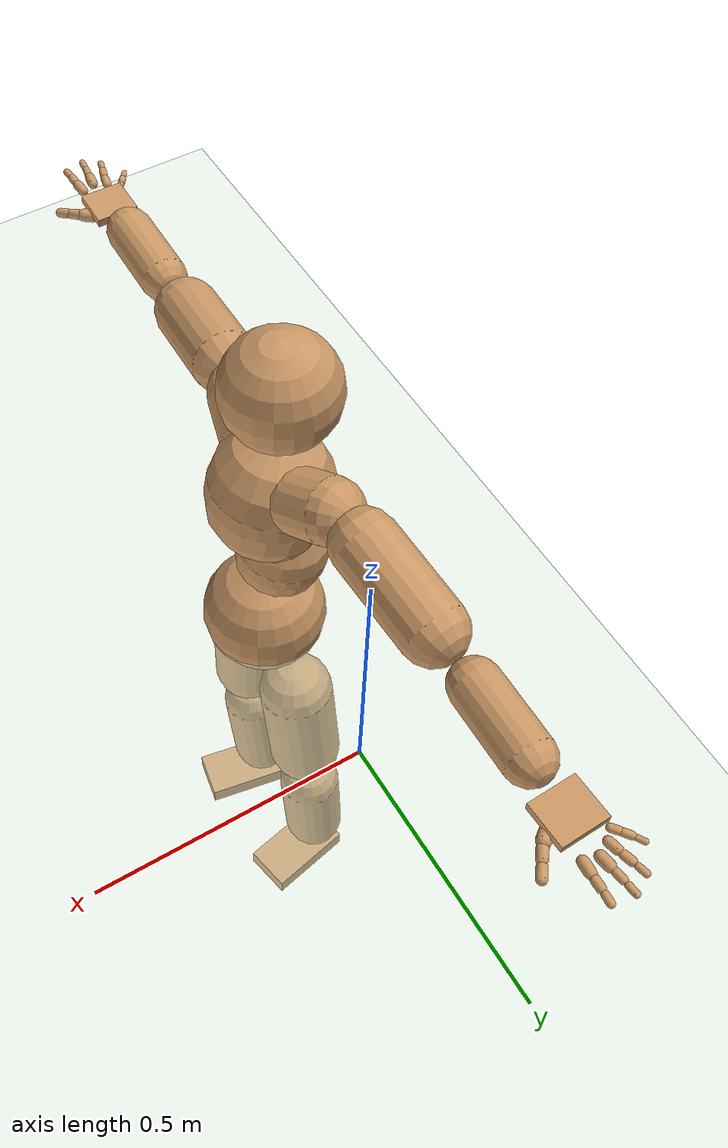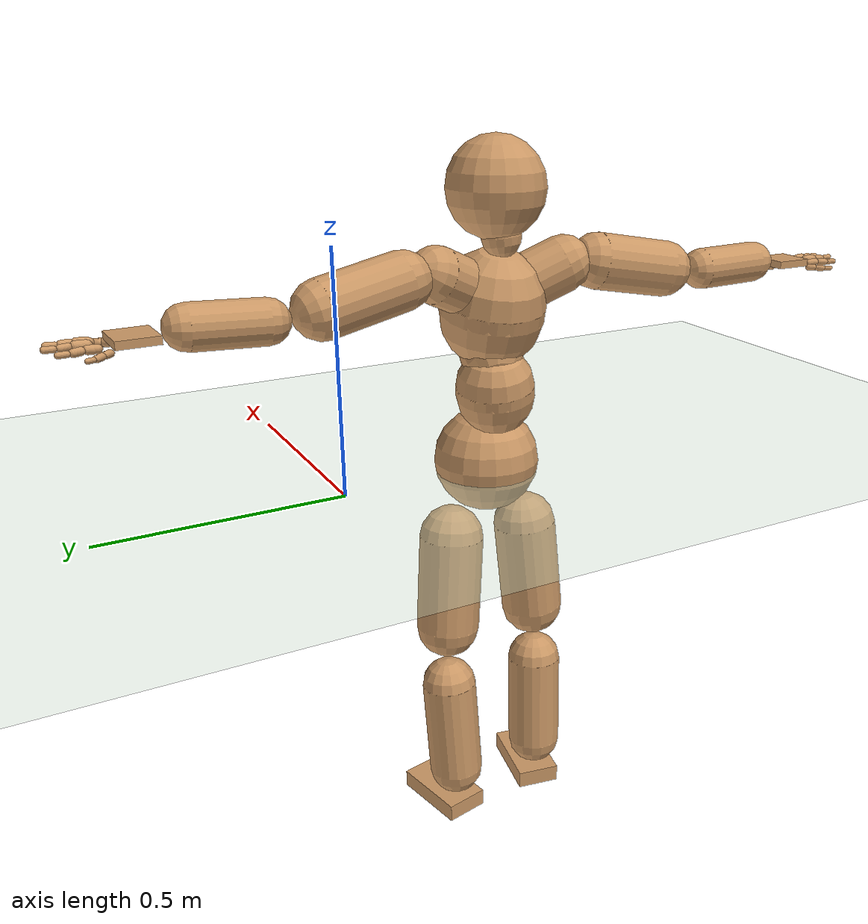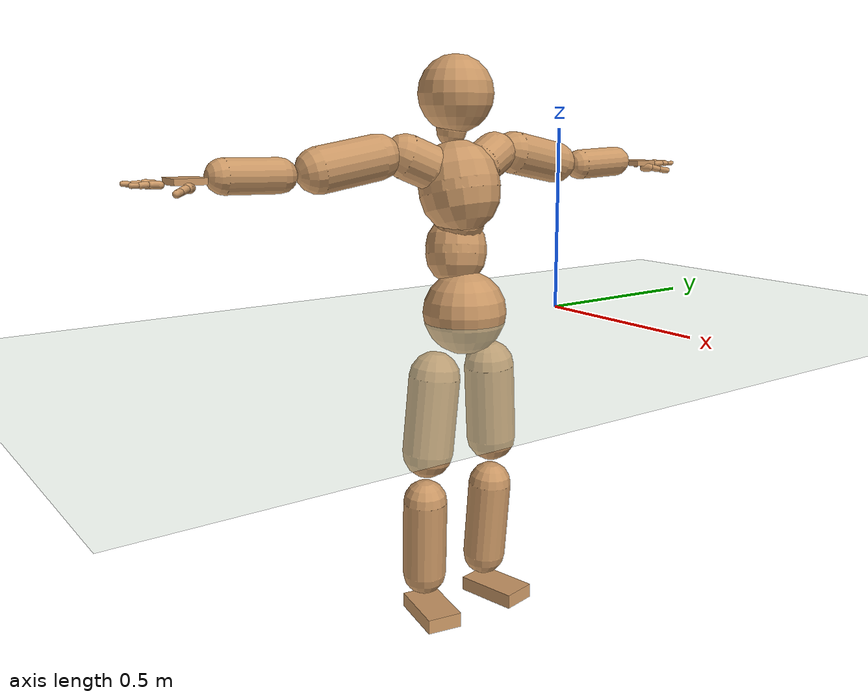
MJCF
<mujoco model="humanoid">
  <compiler coordinate="local" angle="radian"/>
  <default>
    <joint damping="0.0" armature="0.01" stiffness="0.0" limited="true"/>
    <geom conaffinity="1" condim="3" contype="7" margin="0.001" rgba="0.8 0.6 .4 1"/>
  </default>
  <asset>
    <texture type="skybox" builtin="gradient" rgb1=".4 .5 .6" rgb2="0 0 0" width="100" height="100"/>
    <texture builtin="flat" height="1278" mark="cross" markrgb="1 1 1" name="texgeom" random="0.01" rgb1="0.8 0.6 0.4" rgb2="0.8 0.6 0.4" type="cube" width="127"/>
    <texture builtin="checker" height="100" name="texplane" rgb1="0 0 0" rgb2="0.8 0.8 0.8" type="2d" width="100"/>
    <material name="MatPlane" reflectance="0.5" shininess="1" specular="1" texrepeat="60 60" texture="texplane"/>
    <material name="geom" texture="texgeom" texuniform="true"/>
  </asset>
  <worldbody>
    <light cutoff="100" diffuse="1 1 1" dir="-0 0 -1.3" directional="true" exponent="1" pos="0 0 1.3" specular=".1 .1 .1"/>
    <geom conaffinity="1" condim="3" name="floor" pos="0 0 0" rgba="0.8 0.9 0.8 1" size="100 100 .2" type="plane" material="MatPlane"/>
    <body name="Pelvis" pos="0.0009 -0.3265 0.0224">
      <freejoint name="Pelvis"/>
      <geom type="sphere" contype="1" conaffinity="1" density="500" size="0.1127" pos="0.0000 0.0000 0.0000" name="Pelvis"/>
      <body name="L_Hip" pos="-0.0074 0.0864 -0.0906">
        <joint name="L_Hip_x" type="hinge" pos="0 0 0" axis="1 0 0" stiffness="800" damping="80" armature="0.02" range="-180.0000 180.0000"/>
        <joint name="L_Hip_y" type="hinge" pos="0 0 0" axis="0 1 0" stiffness="800" damping="80" armature="0.02" range="-180.0000 180.0000"/>
        <joint name="L_Hip_z" type="hinge" pos="0 0 0" axis="0 0 1" stiffness="800" damping="80" armature="0.02" range="-180.0000 180.0000"/>
        <geom type="capsule" contype="1" conaffinity="1" density="500" fromto="-0.0033 0.0056 -0.0711 -0.0132 0.0225 -0.2843" size="0.0693" name="L_Hip"/>
        <body name="L_Knee" pos="-0.0165 0.0282 -0.3553">
          <joint name="L_Knee_x" type="hinge" pos="0 0 0" axis="1 0 0" stiffness="800" damping="80" armature="0.02" range="-180.0000 180.0000"/>
          <joint name="L_Knee_y" type="hinge" pos="0 0 0" axis="0 1 0" stiffness="800" damping="80" armature="0.02" range="-180.0000 180.0000"/>
          <joint name="L_Knee_z" type="hinge" pos="0 0 0" axis="0 0 1" stiffness="800" damping="80" armature="0.02" range="-180.0000 180.0000"/>
          <geom type="capsule" contype="1" conaffinity="1" density="500" fromto="-0.0054 -0.0024 -0.0745 -0.0216 -0.0097 -0.2978" size="0.0605" name="L_Knee"/>
          <body name="L_Ankle" pos="-0.027 -0.0122 -0.3723">
            <joint name="L_Ankle_x" type="hinge" pos="0 0 0" axis="1 0 0" stiffness="800" damping="80" armature="0.02" range="-180.0000 180.0000"/>
            <joint name="L_Ankle_y" type="hinge" pos="0 0 0" axis="0 1 0" stiffness="800" damping="80" armature="0.02" range="-180.0000 180.0000"/>
            <joint name="L_Ankle_z" type="hinge" pos="0 0 0" axis="0 0 1" stiffness="800" damping="80" armature="0.02" range="-180.0000 180.0000"/>
            <geom type="box" contype="1" conaffinity="1" density="500" pos="0.0541 0.0113 -0.0201" size="0.0877 0.0485 0.02" quat="0.9947 0.0000 0.0000 0.1026" name="L_Ankle"/>
            <body name="L_Toe" pos="0.1083 0.0226 -0.0402">
              <joint name="L_Toe_x" type="hinge" pos="0 0 0" axis="1 0 0" stiffness="500" damping="50" armature="0.02" range="-180.0000 180.0000"/>
              <joint name="L_Toe_y" type="hinge" pos="0 0 0" axis="0 1 0" stiffness="500" damping="50" armature="0.02" range="-180.0000 180.0000"/>
              <joint name="L_Toe_z" type="hinge" pos="0 0 0" axis="0 0 1" stiffness="500" damping="50" armature="0.02" range="-180.0000 180.0000"/>
              <geom type="box" contype="1" conaffinity="1" density="500" pos="0.0000 0.0000 0.0209" size="0.0009 0.0024 0.001" quat="0.9940 0.0000 0.0000 0.1095" name="L_Toe"/>
            </body>
          </body>
        </body>
      </body>
      <body name="R_Hip" pos="-0.0081 -0.0858 -0.0966">
        <joint name="R_Hip_x" type="hinge" pos="0 0 0" axis="1 0 0" stiffness="800" damping="80" armature="0.02" range="-180.0000 180.0000"/>
        <joint name="R_Hip_y" type="hinge" pos="0 0 0" axis="0 1 0" stiffness="800" damping="80" armature="0.02" range="-180.0000 180.0000"/>
        <joint name="R_Hip_z" type="hinge" pos="0 0 0" axis="0 0 1" stiffness="800" damping="80" armature="0.02" range="-180.0000 180.0000"/>
        <geom type="capsule" contype="1" conaffinity="1" density="500" fromto="-0.0020 -0.0066 -0.0703 -0.0081 -0.0265 -0.2813" size="0.0691" name="R_Hip"/>
        <body name="R_Knee" pos="-0.0101 -0.0331 -0.3516">
          <joint name="R_Knee_x" type="hinge" pos="0 0 0" axis="1 0 0" stiffness="800" damping="80" armature="0.02" range="-180.0000 180.0000"/>
          <joint name="R_Knee_y" type="hinge" pos="0 0 0" axis="0 1 0" stiffness="800" damping="80" armature="0.02" range="-180.0000 180.0000"/>
          <joint name="R_Knee_z" type="hinge" pos="0 0 0" axis="0 0 1" stiffness="800" damping="80" armature="0.02" range="-180.0000 180.0000"/>
          <geom type="capsule" contype="1" conaffinity="1" density="500" fromto="-0.0048 0.0015 -0.0727 -0.0191 0.0059 -0.2909" size="0.0605" name="R_Knee"/>
          <body name="R_Ankle" pos="-0.0238 0.0074 -0.3636">
            <joint name="R_Ankle_x" type="hinge" pos="0 0 0" axis="1 0 0" stiffness="800" damping="80" armature="0.02" range="-180.0000 180.0000"/>
            <joint name="R_Ankle_y" type="hinge" pos="0 0 0" axis="0 1 0" stiffness="800" damping="80" armature="0.02" range="-180.0000 180.0000"/>
            <joint name="R_Ankle_z" type="hinge" pos="0 0 0" axis="0 0 1" stiffness="800" damping="80" armature="0.02" range="-180.0000 180.0000"/>
            <geom type="box" contype="1" conaffinity="1" density="500" pos="0.0511 -0.0092 -0.0217" size="0.0877 0.0485 0.02" quat="0.9960 0.0000 0.0000 -0.0890" name="R_Ankle"/>
            <body name="R_Toe" pos="0.1022 -0.0184 -0.0433">
              <joint name="R_Toe_x" type="hinge" pos="0 0 0" axis="1 0 0" stiffness="500" damping="50" armature="0.02" range="-180.0000 180.0000"/>
              <joint name="R_Toe_y" type="hinge" pos="0 0 0" axis="0 1 0" stiffness="500" damping="50" armature="0.02" range="-180.0000 180.0000"/>
              <joint name="R_Toe_z" type="hinge" pos="0 0 0" axis="0 0 1" stiffness="500" damping="50" armature="0.02" range="-180.0000 180.0000"/>
              <geom type="box" contype="1" conaffinity="1" density="500" pos="0.0000 0.0000 0.0225" size="0.0009 0.0024 0.001" quat="0.9970 0.0000 0.0000 -0.0780" name="R_Toe"/>
            </body>
          </body>
        </body>
      </body>
      <body name="Torso" pos="-0.0303 -0.0067 0.1068">
        <joint name="Torso_x" type="hinge" pos="0 0 0" axis="1 0 0" stiffness="1000" damping="100" armature="0.02" range="-180.0000 180.0000"/>
        <joint name="Torso_y" type="hinge" pos="0 0 0" axis="0 1 0" stiffness="1000" damping="100" armature="0.02" range="-180.0000 180.0000"/>
        <joint name="Torso_z" type="hinge" pos="0 0 0" axis="0 0 1" stiffness="1000" damping="100" armature="0.02" range="-180.0000 180.0000"/>
        <geom type="capsule" contype="1" conaffinity="1" density="500" fromto="-0.0098 0.0080 0.0674 -0.0065 0.0053 0.0450" size="0.0822" name="Torso"/>
        <body name="Spine" pos="-0.0163 0.0134 0.1124">
          <joint name="Spine_x" type="hinge" pos="0 0 0" axis="1 0 0" stiffness="1000" damping="100" armature="0.02" range="-180.0000 180.0000"/>
          <joint name="Spine_y" type="hinge" pos="0 0 0" axis="0 1 0" stiffness="1000" damping="100" armature="0.02" range="-180.0000 180.0000"/>
          <joint name="Spine_z" type="hinge" pos="0 0 0" axis="0 0 1" stiffness="1000" damping="100" armature="0.02" range="-180.0000 180.0000"/>
          <geom type="capsule" contype="1" conaffinity="1" density="500" fromto="0.0248 -0.0044 0.0258 0.0166 -0.0029 0.0172" size="0.0661" name="Spine"/>
          <body name="Chest" pos="0.0414 -0.0073 0.043">
            <joint name="Chest_x" type="hinge" pos="0 0 0" axis="1 0 0" stiffness="1000" damping="100" armature="0.02" range="-180.0000 180.0000"/>
            <joint name="Chest_y" type="hinge" pos="0 0 0" axis="0 1 0" stiffness="1000" damping="100" armature="0.02" range="-180.0000 180.0000"/>
            <joint name="Chest_z" type="hinge" pos="0 0 0" axis="0 0 1" stiffness="1000" damping="100" armature="0.02" range="-180.0000 180.0000"/>
            <geom type="capsule" contype="1" conaffinity="1" density="500" fromto="-0.0184 -0.0021 0.0828 -0.0123 -0.0014 0.0552" size="0.1083" name="Chest"/>
            <body name="Neck" pos="-0.0478 -0.0069 0.1891">
              <joint name="Neck_x" type="hinge" pos="0 0 0" axis="1 0 0" stiffness="500" damping="50" armature="0.02" range="-180.0000 180.0000"/>
              <joint name="Neck_y" type="hinge" pos="0 0 0" axis="0 1 0" stiffness="500" damping="50" armature="0.02" range="-180.0000 180.0000"/>
              <joint name="Neck_z" type="hinge" pos="0 0 0" axis="0 0 1" stiffness="500" damping="50" armature="0.02" range="-180.0000 180.0000"/>
              <geom type="capsule" contype="1" conaffinity="1" density="500" fromto="0.0024 0.0019 0.0234 0.0096 0.0078 0.0935" size="0.0403" name="Neck"/>
              <body name="Head" pos="0.012 0.0097 0.1169">
                <joint name="Head_x" type="hinge" pos="0 0 0" axis="1 0 0" stiffness="500" damping="50" armature="0.02" range="-180.0000 180.0000"/>
                <joint name="Head_y" type="hinge" pos="0 0 0" axis="0 1 0" stiffness="500" damping="50" armature="0.02" range="-180.0000 180.0000"/>
                <joint name="Head_z" type="hinge" pos="0 0 0" axis="0 0 1" stiffness="500" damping="50" armature="0.02" range="-180.0000 180.0000"/>
                <geom type="sphere" contype="1" conaffinity="1" density="500" size="0.0998" pos="0.0000 0.0000 0.0000" name="Head"/>
              </body>
            </body>
            <body name="L_Thorax" pos="-0.0185 0.0576 0.1143">
              <joint name="L_Thorax_x" type="hinge" pos="0 0 0" axis="1 0 0" stiffness="500" damping="50" armature="0.02" range="-180.0000 180.0000"/>
              <joint name="L_Thorax_y" type="hinge" pos="0 0 0" axis="0 1 0" stiffness="500" damping="50" armature="0.02" range="-180.0000 180.0000"/>
              <joint name="L_Thorax_z" type="hinge" pos="0 0 0" axis="0 0 1" stiffness="500" damping="50" armature="0.02" range="-180.0000 180.0000"/>
              <geom type="capsule" contype="1" conaffinity="1" density="500" fromto="-0.0066 0.0201 0.0095 -0.0265 0.0803 0.0379" size="0.0571" name="L_Thorax"/>
              <body name="L_Shoulder" pos="-0.0331 0.1003 0.0474">
                <joint name="L_Shoulder_x" type="hinge" pos="0 0 0" axis="1 0 0" stiffness="500" damping="50" armature="0.02" range="-180.0000 180.0000"/>
                <joint name="L_Shoulder_y" type="hinge" pos="0 0 0" axis="0 1 0" stiffness="500" damping="50" armature="0.02" range="-180.0000 180.0000"/>
                <joint name="L_Shoulder_z" type="hinge" pos="0 0 0" axis="0 0 1" stiffness="500" damping="50" armature="0.02" range="-180.0000 180.0000"/>
                <geom type="capsule" contype="1" conaffinity="1" density="500" fromto="-0.0057 0.0562 -0.0106 -0.0230 0.2247 -0.0426" size="0.0578" name="L_Shoulder"/>
                <body name="L_Elbow" pos="-0.0287 0.2808 -0.0532">
                  <joint name="L_Elbow_x" type="hinge" pos="0 0 0" axis="1 0 0" stiffness="500" damping="50" armature="0.02" range="-720.0000 720.0000"/>
                  <joint name="L_Elbow_y" type="hinge" pos="0 0 0" axis="0 1 0" stiffness="500" damping="50" armature="0.02" range="-720.0000 720.0000"/>
                  <joint name="L_Elbow_z" type="hinge" pos="0 0 0" axis="0 0 1" stiffness="500" damping="50" armature="0.02" range="-720.0000 720.0000"/>
                  <geom type="capsule" contype="1" conaffinity="1" density="500" fromto="0.0013 0.0465 0.0018 0.0053 0.1859 0.0072" size="0.043" name="L_Elbow"/>
                  <body name="L_Wrist" pos="0.0067 0.2324 0.009">
                    <joint name="L_Wrist_x" type="hinge" pos="0 0 0" axis="1 0 0" stiffness="300" damping="30" armature="0.02" range="-180.0000 180.0000"/>
                    <joint name="L_Wrist_y" type="hinge" pos="0 0 0" axis="0 1 0" stiffness="300" damping="30" armature="0.02" range="-180.0000 180.0000"/>
                    <joint name="L_Wrist_z" type="hinge" pos="0 0 0" axis="0 0 1" stiffness="300" damping="30" armature="0.02" range="-180.0000 180.0000"/>
                    <geom type="box" contype="1" conaffinity="1" density="500" pos="-0.0018 0.0443 -0.0083" size="0.0388 0.0424 0.0076" quat="0.7213 0.0000 0.0000 -0.6926" name="L_Wrist"/>
                    <body name="L_Index1" pos="0.0212 0.1041 -0.0144">
                      <joint name="L_Index1_x" type="hinge" pos="0 0 0" axis="1 0 0" stiffness="100" damping="10" armature="0.02" range="-180.0000 180.0000"/>
                      <joint name="L_Index1_y" type="hinge" pos="0 0 0" axis="0 1 0" stiffness="100" damping="10" armature="0.02" range="-180.0000 180.0000"/>
                      <joint name="L_Index1_z" type="hinge" pos="0 0 0" axis="0 0 1" stiffness="100" damping="10" armature="0.02" range="-180.0000 180.0000"/>
                      <geom type="capsule" contype="1" conaffinity="1" density="500" fromto="0.0005 0.0063 0.0006 0.0022 0.0252 0.0023" size="0.0091" name="L_Index1"/>
                      <body name="L_Index2" pos="0.0027 0.0315 0.0029">
                        <joint name="L_Index2_x" type="hinge" pos="0 0 0" axis="1 0 0" stiffness="100" damping="10" armature="0.02" range="-180.0000 180.0000"/>
                        <joint name="L_Index2_y" type="hinge" pos="0 0 0" axis="0 1 0" stiffness="100" damping="10" armature="0.02" range="-180.0000 180.0000"/>
                        <joint name="L_Index2_z" type="hinge" pos="0 0 0" axis="0 0 1" stiffness="100" damping="10" armature="0.02" range="-180.0000 180.0000"/>
                        <geom type="capsule" contype="1" conaffinity="1" density="500" fromto="0.0001 0.0044 -0.0003 0.0002 0.0178 -0.0011" size="0.0076" name="L_Index2"/>
                        <body name="L_Index3" pos="0.0003 0.0222 -0.0013">
                          <joint name="L_Index3_x" type="hinge" pos="0 0 0" axis="1 0 0" stiffness="100" damping="10" armature="0.02" range="-180.0000 180.0000"/>
                          <joint name="L_Index3_y" type="hinge" pos="0 0 0" axis="0 1 0" stiffness="100" damping="10" armature="0.02" range="-180.0000 180.0000"/>
                          <joint name="L_Index3_z" type="hinge" pos="0 0 0" axis="0 0 1" stiffness="100" damping="10" armature="0.02" range="-180.0000 180.0000"/>
                          <geom type="capsule" contype="1" conaffinity="1" density="500" fromto="0.0005 0.0048 0.0001 0.0018 0.0194 0.0005" size="0.0063" name="L_Index3"/>
                        </body>
                      </body>
                    </body>
                    <body name="L_Middle1" pos="-0.0016 0.1111 -0.0118">
                      <joint name="L_Middle1_x" type="hinge" pos="0 0 0" axis="1 0 0" stiffness="100" damping="10" armature="0.02" range="-180.0000 180.0000"/>
                      <joint name="L_Middle1_y" type="hinge" pos="0 0 0" axis="0 1 0" stiffness="100" damping="10" armature="0.02" range="-180.0000 180.0000"/>
                      <joint name="L_Middle1_z" type="hinge" pos="0 0 0" axis="0 0 1" stiffness="100" damping="10" armature="0.02" range="-180.0000 180.0000"/>
                      <geom type="capsule" contype="1" conaffinity="1" density="500" fromto="-0.0007 0.0060 0.0003 -0.0029 0.0240 0.0013" size="0.0093" name="L_Middle1"/>
                      <body name="L_Middle2" pos="-0.0036 0.03 0.0016">
                        <joint name="L_Middle2_x" type="hinge" pos="0 0 0" axis="1 0 0" stiffness="100" damping="10" armature="0.02" range="-180.0000 180.0000"/>
                        <joint name="L_Middle2_y" type="hinge" pos="0 0 0" axis="0 1 0" stiffness="100" damping="10" armature="0.02" range="-180.0000 180.0000"/>
                        <joint name="L_Middle2_z" type="hinge" pos="0 0 0" axis="0 0 1" stiffness="100" damping="10" armature="0.02" range="-180.0000 180.0000"/>
                        <geom type="capsule" contype="1" conaffinity="1" density="500" fromto="-0.0007 0.0046 -0.0001 -0.0029 0.0185 -0.0005" size="0.0068" name="L_Middle2"/>
                        <body name="L_Middle3" pos="-0.0036 0.0231 -0.0007">
                          <joint name="L_Middle3_x" type="hinge" pos="0 0 0" axis="1 0 0" stiffness="100" damping="10" armature="0.02" range="-180.0000 180.0000"/>
                          <joint name="L_Middle3_y" type="hinge" pos="0 0 0" axis="0 1 0" stiffness="100" damping="10" armature="0.02" range="-180.0000 180.0000"/>
                          <joint name="L_Middle3_z" type="hinge" pos="0 0 0" axis="0 0 1" stiffness="100" damping="10" armature="0.02" range="-180.0000 180.0000"/>
                          <geom type="capsule" contype="1" conaffinity="1" density="500" fromto="-0.0003 0.0050 0.0003 -0.0013 0.0201 0.0011" size="0.0058" name="L_Middle3"/>
                        </body>
                      </body>
                    </body>
                    <body name="L_Pinky1" pos="-0.0403 0.0855 -0.0195">
                      <joint name="L_Pinky1_x" type="hinge" pos="0 0 0" axis="1 0 0" stiffness="100" damping="10" armature="0.02" range="-180.0000 180.0000"/>
                      <joint name="L_Pinky1_y" type="hinge" pos="0 0 0" axis="0 1 0" stiffness="100" damping="10" armature="0.02" range="-180.0000 180.0000"/>
                      <joint name="L_Pinky1_z" type="hinge" pos="0 0 0" axis="0 0 1" stiffness="100" damping="10" armature="0.02" range="-180.0000 180.0000"/>
                      <geom type="capsule" contype="1" conaffinity="1" density="500" fromto="-0.0024 0.0030 -0.0001 -0.0096 0.0119 -0.0004" size="0.0067" name="L_Pinky1"/>
                      <body name="L_Pinky2" pos="-0.012 0.0148 -0.0005">
                        <joint name="L_Pinky2_x" type="hinge" pos="0 0 0" axis="1 0 0" stiffness="100" damping="10" armature="0.02" range="-180.0000 180.0000"/>
                        <joint name="L_Pinky2_y" type="hinge" pos="0 0 0" axis="0 1 0" stiffness="100" damping="10" armature="0.02" range="-180.0000 180.0000"/>
                        <joint name="L_Pinky2_z" type="hinge" pos="0 0 0" axis="0 0 1" stiffness="100" damping="10" armature="0.02" range="-180.0000 180.0000"/>
                        <geom type="capsule" contype="1" conaffinity="1" density="500" fromto="-0.0023 0.0030 -0.0002 -0.0093 0.0120 -0.0009" size="0.0065" name="L_Pinky2"/>
                        <body name="L_Pinky3" pos="-0.0116 0.015 -0.0011">
                          <joint name="L_Pinky3_x" type="hinge" pos="0 0 0" axis="1 0 0" stiffness="100" damping="10" armature="0.02" range="-180.0000 180.0000"/>
                          <joint name="L_Pinky3_y" type="hinge" pos="0 0 0" axis="0 1 0" stiffness="100" damping="10" armature="0.02" range="-180.0000 180.0000"/>
                          <joint name="L_Pinky3_z" type="hinge" pos="0 0 0" axis="0 0 1" stiffness="100" damping="10" armature="0.02" range="-180.0000 180.0000"/>
                          <geom type="capsule" contype="1" conaffinity="1" density="500" fromto="-0.0019 0.0034 0.0002 -0.0077 0.0136 0.0007" size="0.0049" name="L_Pinky3"/>
                        </body>
                      </body>
                    </body>
                    <body name="L_Ring1" pos="-0.0246 0.0989 -0.0145">
                      <joint name="L_Ring1_x" type="hinge" pos="0 0 0" axis="1 0 0" stiffness="100" damping="10" armature="0.02" range="-180.0000 180.0000"/>
                      <joint name="L_Ring1_y" type="hinge" pos="0 0 0" axis="0 1 0" stiffness="100" damping="10" armature="0.02" range="-180.0000 180.0000"/>
                      <joint name="L_Ring1_z" type="hinge" pos="0 0 0" axis="0 0 1" stiffness="100" damping="10" armature="0.02" range="-180.0000 180.0000"/>
                      <geom type="capsule" contype="1" conaffinity="1" density="500" fromto="-0.0011 0.0055 0.0003 -0.0043 0.0218 0.0013" size="0.0081" name="L_Ring1"/>
                      <body name="L_Ring2" pos="-0.0054 0.0273 0.0016">
                        <joint name="L_Ring2_x" type="hinge" pos="0 0 0" axis="1 0 0" stiffness="100" damping="10" armature="0.02" range="-180.0000 180.0000"/>
                        <joint name="L_Ring2_y" type="hinge" pos="0 0 0" axis="0 1 0" stiffness="100" damping="10" armature="0.02" range="-180.0000 180.0000"/>
                        <joint name="L_Ring2_z" type="hinge" pos="0 0 0" axis="0 0 1" stiffness="100" damping="10" armature="0.02" range="-180.0000 180.0000"/>
                        <geom type="capsule" contype="1" conaffinity="1" density="500" fromto="-0.0014 0.0045 -0.0002 -0.0057 0.0178 -0.0009" size="0.0073" name="L_Ring2"/>
                        <body name="L_Ring3" pos="-0.0071 0.0223 -0.0011">
                          <joint name="L_Ring3_x" type="hinge" pos="0 0 0" axis="1 0 0" stiffness="100" damping="10" armature="0.02" range="-180.0000 180.0000"/>
                          <joint name="L_Ring3_y" type="hinge" pos="0 0 0" axis="0 1 0" stiffness="100" damping="10" armature="0.02" range="-180.0000 180.0000"/>
                          <joint name="L_Ring3_z" type="hinge" pos="0 0 0" axis="0 0 1" stiffness="100" damping="10" armature="0.02" range="-180.0000 180.0000"/>
                          <geom type="capsule" contype="1" conaffinity="1" density="500" fromto="-0.0010 0.0049 0.0002 -0.0041 0.0194 0.0007" size="0.0056" name="L_Ring3"/>
                        </body>
                      </body>
                    </body>
                    <body name="L_Thumb1" pos="0.0273 0.0437 -0.0226">
                      <joint name="L_Thumb1_x" type="hinge" pos="0 0 0" axis="1 0 0" stiffness="100" damping="10" armature="0.02" range="-180.0000 180.0000"/>
                      <joint name="L_Thumb1_y" type="hinge" pos="0 0 0" axis="0 1 0" stiffness="100" damping="10" armature="0.02" range="-180.0000 180.0000"/>
                      <joint name="L_Thumb1_z" type="hinge" pos="0 0 0" axis="0 0 1" stiffness="100" damping="10" armature="0.02" range="-180.0000 180.0000"/>
                      <geom type="capsule" contype="1" conaffinity="1" density="500" fromto="0.0047 0.0035 0.0002 0.0189 0.0138 0.0009" size="0.0119" name="L_Thumb1"/>
                      <body name="L_Thumb2" pos="0.0236 0.0173 0.0011">
                        <joint name="L_Thumb2_x" type="hinge" pos="0 0 0" axis="1 0 0" stiffness="100" damping="10" armature="0.02" range="-180.0000 180.0000"/>
                        <joint name="L_Thumb2_y" type="hinge" pos="0 0 0" axis="0 1 0" stiffness="100" damping="10" armature="0.02" range="-180.0000 180.0000"/>
                        <joint name="L_Thumb2_z" type="hinge" pos="0 0 0" axis="0 0 1" stiffness="100" damping="10" armature="0.02" range="-180.0000 180.0000"/>
                        <geom type="capsule" contype="1" conaffinity="1" density="500" fromto="0.0028 0.0040 -0.0012 0.0113 0.0160 -0.0047" size="0.0094" name="L_Thumb2"/>
                        <body name="L_Thumb3" pos="0.0142 0.02 -0.0059">
                          <joint name="L_Thumb3_x" type="hinge" pos="0 0 0" axis="1 0 0" stiffness="100" damping="10" armature="0.02" range="-180.0000 180.0000"/>
                          <joint name="L_Thumb3_y" type="hinge" pos="0 0 0" axis="0 1 0" stiffness="100" damping="10" armature="0.02" range="-180.0000 180.0000"/>
                          <joint name="L_Thumb3_z" type="hinge" pos="0 0 0" axis="0 0 1" stiffness="100" damping="10" armature="0.02" range="-180.0000 180.0000"/>
                          <geom type="capsule" contype="1" conaffinity="1" density="500" fromto="0.0032 0.0044 -0.0008 0.0129 0.0176 -0.0031" size="0.0088" name="L_Thumb3"/>
                        </body>
                      </body>
                    </body>
                  </body>
                </body>
              </body>
            </body>
            <body name="R_Thorax" pos="-0.0257 -0.061 0.1108">
              <joint name="R_Thorax_x" type="hinge" pos="0 0 0" axis="1 0 0" stiffness="500" damping="50" armature="0.02" range="-180.0000 180.0000"/>
              <joint name="R_Thorax_y" type="hinge" pos="0 0 0" axis="0 1 0" stiffness="500" damping="50" armature="0.02" range="-180.0000 180.0000"/>
              <joint name="R_Thorax_z" type="hinge" pos="0 0 0" axis="0 0 1" stiffness="500" damping="50" armature="0.02" range="-180.0000 180.0000"/>
              <geom type="capsule" contype="1" conaffinity="1" density="500" fromto="-0.0050 -0.0218 0.0097 -0.0200 -0.0873 0.0386" size="0.0583" name="R_Thorax"/>
              <body name="R_Shoulder" pos="-0.0249 -0.1091 0.0483">
                <joint name="R_Shoulder_x" type="hinge" pos="0 0 0" axis="1 0 0" stiffness="500" damping="50" armature="0.02" range="-180.0000 180.0000"/>
                <joint name="R_Shoulder_y" type="hinge" pos="0 0 0" axis="0 1 0" stiffness="500" damping="50" armature="0.02" range="-180.0000 180.0000"/>
                <joint name="R_Shoulder_z" type="hinge" pos="0 0 0" axis="0 0 1" stiffness="500" damping="50" armature="0.02" range="-180.0000 180.0000"/>
                <geom type="capsule" contype="1" conaffinity="1" density="500" fromto="-0.0044 -0.0540 -0.0095 -0.0175 -0.2162 -0.0380" size="0.0583" name="R_Shoulder"/>
                <body name="R_Elbow" pos="-0.0219 -0.2702 -0.0475">
                  <joint name="R_Elbow_x" type="hinge" pos="0 0 0" axis="1 0 0" stiffness="500" damping="50" armature="0.02" range="-720.0000 720.0000"/>
                  <joint name="R_Elbow_y" type="hinge" pos="0 0 0" axis="0 1 0" stiffness="500" damping="50" armature="0.02" range="-720.0000 720.0000"/>
                  <joint name="R_Elbow_z" type="hinge" pos="0 0 0" axis="0 0 1" stiffness="500" damping="50" armature="0.02" range="-720.0000 720.0000"/>
                  <geom type="capsule" contype="1" conaffinity="1" density="500" fromto="-0.0006 -0.0465 0.0010 -0.0023 -0.1861 0.0040" size="0.0431" name="R_Elbow"/>
                  <body name="R_Wrist" pos="-0.0029 -0.2326 0.005">
                    <joint name="R_Wrist_x" type="hinge" pos="0 0 0" axis="1 0 0" stiffness="300" damping="30" armature="0.02" range="-180.0000 180.0000"/>
                    <joint name="R_Wrist_y" type="hinge" pos="0 0 0" axis="0 1 0" stiffness="300" damping="30" armature="0.02" range="-180.0000 180.0000"/>
                    <joint name="R_Wrist_z" type="hinge" pos="0 0 0" axis="0 0 1" stiffness="300" damping="30" armature="0.02" range="-180.0000 180.0000"/>
                    <geom type="box" contype="1" conaffinity="1" density="500" pos="-0.0009 -0.0437 -0.0078" size="0.0388 0.0396 0.0078" quat="0.7146 0.0000 0.0000 0.6995" name="R_Wrist"/>
                    <body name="R_Index1" pos="0.0229 -0.1028 -0.0135">
                      <joint name="R_Index1_x" type="hinge" pos="0 0 0" axis="1 0 0" stiffness="100" damping="10" armature="0.02" range="-180.0000 180.0000"/>
                      <joint name="R_Index1_y" type="hinge" pos="0 0 0" axis="0 1 0" stiffness="100" damping="10" armature="0.02" range="-180.0000 180.0000"/>
                      <joint name="R_Index1_z" type="hinge" pos="0 0 0" axis="0 0 1" stiffness="100" damping="10" armature="0.02" range="-180.0000 180.0000"/>
                      <geom type="capsule" contype="1" conaffinity="1" density="500" fromto="0.0005 -0.0063 0.0006 0.0022 -0.0252 0.0023" size="0.0091" name="R_Index1"/>
                      <body name="R_Index2" pos="0.0027 -0.0315 0.0029">
                        <joint name="R_Index2_x" type="hinge" pos="0 0 0" axis="1 0 0" stiffness="100" damping="10" armature="0.02" range="-180.0000 180.0000"/>
                        <joint name="R_Index2_y" type="hinge" pos="0 0 0" axis="0 1 0" stiffness="100" damping="10" armature="0.02" range="-180.0000 180.0000"/>
                        <joint name="R_Index2_z" type="hinge" pos="0 0 0" axis="0 0 1" stiffness="100" damping="10" armature="0.02" range="-180.0000 180.0000"/>
                        <geom type="capsule" contype="1" conaffinity="1" density="500" fromto="0.0001 -0.0044 -0.0003 0.0002 -0.0178 -0.0011" size="0.0076" name="R_Index2"/>
                        <body name="R_Index3" pos="0.0003 -0.0222 -0.0013">
                          <joint name="R_Index3_x" type="hinge" pos="0 0 0" axis="1 0 0" stiffness="100" damping="10" armature="0.02" range="-180.0000 180.0000"/>
                          <joint name="R_Index3_y" type="hinge" pos="0 0 0" axis="0 1 0" stiffness="100" damping="10" armature="0.02" range="-180.0000 180.0000"/>
                          <joint name="R_Index3_z" type="hinge" pos="0 0 0" axis="0 0 1" stiffness="100" damping="10" armature="0.02" range="-180.0000 180.0000"/>
                          <geom type="capsule" contype="1" conaffinity="1" density="500" fromto="0.0005 -0.0040 0.0001 0.0018 -0.0162 0.0005" size="0.0066" name="R_Index3"/>
                        </body>
                      </body>
                    </body>
                    <body name="R_Middle1" pos="0.0002 -0.1098 -0.0109">
                      <joint name="R_Middle1_x" type="hinge" pos="0 0 0" axis="1 0 0" stiffness="100" damping="10" armature="0.02" range="-180.0000 180.0000"/>
                      <joint name="R_Middle1_y" type="hinge" pos="0 0 0" axis="0 1 0" stiffness="100" damping="10" armature="0.02" range="-180.0000 180.0000"/>
                      <joint name="R_Middle1_z" type="hinge" pos="0 0 0" axis="0 0 1" stiffness="100" damping="10" armature="0.02" range="-180.0000 180.0000"/>
                      <geom type="capsule" contype="1" conaffinity="1" density="500" fromto="-0.0007 -0.0060 0.0003 -0.0029 -0.0240 0.0013" size="0.0093" name="R_Middle1"/>
                      <body name="R_Middle2" pos="-0.0036 -0.03 0.0016">
                        <joint name="R_Middle2_x" type="hinge" pos="0 0 0" axis="1 0 0" stiffness="100" damping="10" armature="0.02" range="-180.0000 180.0000"/>
                        <joint name="R_Middle2_y" type="hinge" pos="0 0 0" axis="0 1 0" stiffness="100" damping="10" armature="0.02" range="-180.0000 180.0000"/>
                        <joint name="R_Middle2_z" type="hinge" pos="0 0 0" axis="0 0 1" stiffness="100" damping="10" armature="0.02" range="-180.0000 180.0000"/>
                        <geom type="capsule" contype="1" conaffinity="1" density="500" fromto="-0.0007 -0.0046 -0.0001 -0.0029 -0.0185 -0.0005" size="0.0068" name="R_Middle2"/>
                        <body name="R_Middle3" pos="-0.0036 -0.0231 -0.0007">
                          <joint name="R_Middle3_x" type="hinge" pos="0 0 0" axis="1 0 0" stiffness="100" damping="10" armature="0.02" range="-180.0000 180.0000"/>
                          <joint name="R_Middle3_y" type="hinge" pos="0 0 0" axis="0 1 0" stiffness="100" damping="10" armature="0.02" range="-180.0000 180.0000"/>
                          <joint name="R_Middle3_z" type="hinge" pos="0 0 0" axis="0 0 1" stiffness="100" damping="10" armature="0.02" range="-180.0000 180.0000"/>
                          <geom type="capsule" contype="1" conaffinity="1" density="500" fromto="-0.0003 -0.0042 0.0003 -0.0013 -0.0169 0.0011" size="0.0061" name="R_Middle3"/>
                        </body>
                      </body>
                    </body>
                    <body name="R_Pinky1" pos="-0.0386 -0.0842 -0.0186">
                      <joint name="R_Pinky1_x" type="hinge" pos="0 0 0" axis="1 0 0" stiffness="100" damping="10" armature="0.02" range="-180.0000 180.0000"/>
                      <joint name="R_Pinky1_y" type="hinge" pos="0 0 0" axis="0 1 0" stiffness="100" damping="10" armature="0.02" range="-180.0000 180.0000"/>
                      <joint name="R_Pinky1_z" type="hinge" pos="0 0 0" axis="0 0 1" stiffness="100" damping="10" armature="0.02" range="-180.0000 180.0000"/>
                      <geom type="capsule" contype="1" conaffinity="1" density="500" fromto="-0.0024 -0.0030 -0.0001 -0.0096 -0.0119 -0.0004" size="0.0067" name="R_Pinky1"/>
                      <body name="R_Pinky2" pos="-0.012 -0.0148 -0.0005">
                        <joint name="R_Pinky2_x" type="hinge" pos="0 0 0" axis="1 0 0" stiffness="100" damping="10" armature="0.02" range="-180.0000 180.0000"/>
                        <joint name="R_Pinky2_y" type="hinge" pos="0 0 0" axis="0 1 0" stiffness="100" damping="10" armature="0.02" range="-180.0000 180.0000"/>
                        <joint name="R_Pinky2_z" type="hinge" pos="0 0 0" axis="0 0 1" stiffness="100" damping="10" armature="0.02" range="-180.0000 180.0000"/>
                        <geom type="capsule" contype="1" conaffinity="1" density="500" fromto="-0.0023 -0.0030 -0.0002 -0.0093 -0.0120 -0.0009" size="0.0065" name="R_Pinky2"/>
                        <body name="R_Pinky3" pos="-0.0116 -0.015 -0.0011">
                          <joint name="R_Pinky3_x" type="hinge" pos="0 0 0" axis="1 0 0" stiffness="100" damping="10" armature="0.02" range="-180.0000 180.0000"/>
                          <joint name="R_Pinky3_y" type="hinge" pos="0 0 0" axis="0 1 0" stiffness="100" damping="10" armature="0.02" range="-180.0000 180.0000"/>
                          <joint name="R_Pinky3_z" type="hinge" pos="0 0 0" axis="0 0 1" stiffness="100" damping="10" armature="0.02" range="-180.0000 180.0000"/>
                          <geom type="capsule" contype="1" conaffinity="1" density="500" fromto="-0.0019 -0.0026 0.0002 -0.0077 -0.0104 0.0007" size="0.0052" name="R_Pinky3"/>
                        </body>
                      </body>
                    </body>
                    <body name="R_Ring1" pos="-0.0228 -0.0976 -0.0135">
                      <joint name="R_Ring1_x" type="hinge" pos="0 0 0" axis="1 0 0" stiffness="100" damping="10" armature="0.02" range="-180.0000 180.0000"/>
                      <joint name="R_Ring1_y" type="hinge" pos="0 0 0" axis="0 1 0" stiffness="100" damping="10" armature="0.02" range="-180.0000 180.0000"/>
                      <joint name="R_Ring1_z" type="hinge" pos="0 0 0" axis="0 0 1" stiffness="100" damping="10" armature="0.02" range="-180.0000 180.0000"/>
                      <geom type="capsule" contype="1" conaffinity="1" density="500" fromto="-0.0011 -0.0055 0.0003 -0.0043 -0.0218 0.0013" size="0.0081" name="R_Ring1"/>
                      <body name="R_Ring2" pos="-0.0054 -0.0273 0.0016">
                        <joint name="R_Ring2_x" type="hinge" pos="0 0 0" axis="1 0 0" stiffness="100" damping="10" armature="0.02" range="-180.0000 180.0000"/>
                        <joint name="R_Ring2_y" type="hinge" pos="0 0 0" axis="0 1 0" stiffness="100" damping="10" armature="0.02" range="-180.0000 180.0000"/>
                        <joint name="R_Ring2_z" type="hinge" pos="0 0 0" axis="0 0 1" stiffness="100" damping="10" armature="0.02" range="-180.0000 180.0000"/>
                        <geom type="capsule" contype="1" conaffinity="1" density="500" fromto="-0.0014 -0.0045 -0.0002 -0.0057 -0.0178 -0.0009" size="0.0073" name="R_Ring2"/>
                        <body name="R_Ring3" pos="-0.0071 -0.0223 -0.0011">
                          <joint name="R_Ring3_x" type="hinge" pos="0 0 0" axis="1 0 0" stiffness="100" damping="10" armature="0.02" range="-180.0000 180.0000"/>
                          <joint name="R_Ring3_y" type="hinge" pos="0 0 0" axis="0 1 0" stiffness="100" damping="10" armature="0.02" range="-180.0000 180.0000"/>
                          <joint name="R_Ring3_z" type="hinge" pos="0 0 0" axis="0 0 1" stiffness="100" damping="10" armature="0.02" range="-180.0000 180.0000"/>
                          <geom type="capsule" contype="1" conaffinity="1" density="500" fromto="-0.0010 -0.0041 0.0002 -0.0041 -0.0162 0.0007" size="0.0059" name="R_Ring3"/>
                        </body>
                      </body>
                    </body>
                    <body name="R_Thumb1" pos="0.029 -0.0424 -0.0217">
                      <joint name="R_Thumb1_x" type="hinge" pos="0 0 0" axis="1 0 0" stiffness="100" damping="10" armature="0.02" range="-180.0000 180.0000"/>
                      <joint name="R_Thumb1_y" type="hinge" pos="0 0 0" axis="0 1 0" stiffness="100" damping="10" armature="0.02" range="-180.0000 180.0000"/>
                      <joint name="R_Thumb1_z" type="hinge" pos="0 0 0" axis="0 0 1" stiffness="100" damping="10" armature="0.02" range="-180.0000 180.0000"/>
                      <geom type="capsule" contype="1" conaffinity="1" density="500" fromto="0.0047 -0.0035 0.0002 0.0189 -0.0138 0.0009" size="0.0119" name="R_Thumb1"/>
                      <body name="R_Thumb2" pos="0.0236 -0.0173 0.0011">
                        <joint name="R_Thumb2_x" type="hinge" pos="0 0 0" axis="1 0 0" stiffness="100" damping="10" armature="0.02" range="-180.0000 180.0000"/>
                        <joint name="R_Thumb2_y" type="hinge" pos="0 0 0" axis="0 1 0" stiffness="100" damping="10" armature="0.02" range="-180.0000 180.0000"/>
                        <joint name="R_Thumb2_z" type="hinge" pos="0 0 0" axis="0 0 1" stiffness="100" damping="10" armature="0.02" range="-180.0000 180.0000"/>
                        <geom type="capsule" contype="1" conaffinity="1" density="500" fromto="0.0028 -0.0040 -0.0012 0.0113 -0.0160 -0.0047" size="0.0094" name="R_Thumb2"/>
                        <body name="R_Thumb3" pos="0.0142 -0.02 -0.0059">
                          <joint name="R_Thumb3_x" type="hinge" pos="0 0 0" axis="1 0 0" stiffness="100" damping="10" armature="0.02" range="-180.0000 180.0000"/>
                          <joint name="R_Thumb3_y" type="hinge" pos="0 0 0" axis="0 1 0" stiffness="100" damping="10" armature="0.02" range="-180.0000 180.0000"/>
                          <joint name="R_Thumb3_z" type="hinge" pos="0 0 0" axis="0 0 1" stiffness="100" damping="10" armature="0.02" range="-180.0000 180.0000"/>
                          <geom type="capsule" contype="1" conaffinity="1" density="500" fromto="0.0032 -0.0036 -0.0008 0.0129 -0.0144 -0.0031" size="0.009" name="R_Thumb3"/>
                        </body>
                      </body>
                    </body>
                  </body>
                </body>
              </body>
            </body>
          </body>
        </body>
      </body>
    </body>
  </worldbody>
  <actuator>
    <motor name="L_Hip_x" joint="L_Hip_x" gear="500"/>
    <motor name="L_Hip_y" joint="L_Hip_y" gear="500"/>
    <motor name="L_Hip_z" joint="L_Hip_z" gear="500"/>
    <motor name="L_Knee_x" joint="L_Knee_x" gear="500"/>
    <motor name="L_Knee_y" joint="L_Knee_y" gear="500"/>
    <motor name="L_Knee_z" joint="L_Knee_z" gear="500"/>
    <motor name="L_Ankle_x" joint="L_Ankle_x" gear="500"/>
    <motor name="L_Ankle_y" joint="L_Ankle_y" gear="500"/>
    <motor name="L_Ankle_z" joint="L_Ankle_z" gear="500"/>
    <motor name="L_Toe_x" joint="L_Toe_x" gear="500"/>
    <motor name="L_Toe_y" joint="L_Toe_y" gear="500"/>
    <motor name="L_Toe_z" joint="L_Toe_z" gear="500"/>
    <motor name="R_Hip_x" joint="R_Hip_x" gear="500"/>
    <motor name="R_Hip_y" joint="R_Hip_y" gear="500"/>
    <motor name="R_Hip_z" joint="R_Hip_z" gear="500"/>
    <motor name="R_Knee_x" joint="R_Knee_x" gear="500"/>
    <motor name="R_Knee_y" joint="R_Knee_y" gear="500"/>
    <motor name="R_Knee_z" joint="R_Knee_z" gear="500"/>
    <motor name="R_Ankle_x" joint="R_Ankle_x" gear="500"/>
    <motor name="R_Ankle_y" joint="R_Ankle_y" gear="500"/>
    <motor name="R_Ankle_z" joint="R_Ankle_z" gear="500"/>
    <motor name="R_Toe_x" joint="R_Toe_x" gear="500"/>
    <motor name="R_Toe_y" joint="R_Toe_y" gear="500"/>
    <motor name="R_Toe_z" joint="R_Toe_z" gear="500"/>
    <motor name="Torso_x" joint="Torso_x" gear="500"/>
    <motor name="Torso_y" joint="Torso_y" gear="500"/>
    <motor name="Torso_z" joint="Torso_z" gear="500"/>
    <motor name="Spine_x" joint="Spine_x" gear="500"/>
    <motor name="Spine_y" joint="Spine_y" gear="500"/>
    <motor name="Spine_z" joint="Spine_z" gear="500"/>
    <motor name="Chest_x" joint="Chest_x" gear="500"/>
    <motor name="Chest_y" joint="Chest_y" gear="500"/>
    <motor name="Chest_z" joint="Chest_z" gear="500"/>
    <motor name="Neck_x" joint="Neck_x" gear="500"/>
    <motor name="Neck_y" joint="Neck_y" gear="500"/>
    <motor name="Neck_z" joint="Neck_z" gear="500"/>
    <motor name="Head_x" joint="Head_x" gear="500"/>
    <motor name="Head_y" joint="Head_y" gear="500"/>
    <motor name="Head_z" joint="Head_z" gear="500"/>
    <motor name="L_Thorax_x" joint="L_Thorax_x" gear="500"/>
    <motor name="L_Thorax_y" joint="L_Thorax_y" gear="500"/>
    <motor name="L_Thorax_z" joint="L_Thorax_z" gear="500"/>
    <motor name="L_Shoulder_x" joint="L_Shoulder_x" gear="500"/>
    <motor name="L_Shoulder_y" joint="L_Shoulder_y" gear="500"/>
    <motor name="L_Shoulder_z" joint="L_Shoulder_z" gear="500"/>
    <motor name="L_Elbow_x" joint="L_Elbow_x" gear="500"/>
    <motor name="L_Elbow_y" joint="L_Elbow_y" gear="500"/>
    <motor name="L_Elbow_z" joint="L_Elbow_z" gear="500"/>
    <motor name="L_Wrist_x" joint="L_Wrist_x" gear="500"/>
    <motor name="L_Wrist_y" joint="L_Wrist_y" gear="500"/>
    <motor name="L_Wrist_z" joint="L_Wrist_z" gear="500"/>
    <motor name="L_Index1_x" joint="L_Index1_x" gear="500"/>
    <motor name="L_Index1_y" joint="L_Index1_y" gear="500"/>
    <motor name="L_Index1_z" joint="L_Index1_z" gear="500"/>
    <motor name="L_Index2_x" joint="L_Index2_x" gear="500"/>
    <motor name="L_Index2_y" joint="L_Index2_y" gear="500"/>
    <motor name="L_Index2_z" joint="L_Index2_z" gear="500"/>
    <motor name="L_Index3_x" joint="L_Index3_x" gear="500"/>
    <motor name="L_Index3_y" joint="L_Index3_y" gear="500"/>
    <motor name="L_Index3_z" joint="L_Index3_z" gear="500"/>
    <motor name="L_Middle1_x" joint="L_Middle1_x" gear="500"/>
    <motor name="L_Middle1_y" joint="L_Middle1_y" gear="500"/>
    <motor name="L_Middle1_z" joint="L_Middle1_z" gear="500"/>
    <motor name="L_Middle2_x" joint="L_Middle2_x" gear="500"/>
    <motor name="L_Middle2_y" joint="L_Middle2_y" gear="500"/>
    <motor name="L_Middle2_z" joint="L_Middle2_z" gear="500"/>
    <motor name="L_Middle3_x" joint="L_Middle3_x" gear="500"/>
    <motor name="L_Middle3_y" joint="L_Middle3_y" gear="500"/>
    <motor name="L_Middle3_z" joint="L_Middle3_z" gear="500"/>
    <motor name="L_Pinky1_x" joint="L_Pinky1_x" gear="500"/>
    <motor name="L_Pinky1_y" joint="L_Pinky1_y" gear="500"/>
    <motor name="L_Pinky1_z" joint="L_Pinky1_z" gear="500"/>
    <motor name="L_Pinky2_x" joint="L_Pinky2_x" gear="500"/>
    <motor name="L_Pinky2_y" joint="L_Pinky2_y" gear="500"/>
    <motor name="L_Pinky2_z" joint="L_Pinky2_z" gear="500"/>
    <motor name="L_Pinky3_x" joint="L_Pinky3_x" gear="500"/>
    <motor name="L_Pinky3_y" joint="L_Pinky3_y" gear="500"/>
    <motor name="L_Pinky3_z" joint="L_Pinky3_z" gear="500"/>
    <motor name="L_Ring1_x" joint="L_Ring1_x" gear="500"/>
    <motor name="L_Ring1_y" joint="L_Ring1_y" gear="500"/>
    <motor name="L_Ring1_z" joint="L_Ring1_z" gear="500"/>
    <motor name="L_Ring2_x" joint="L_Ring2_x" gear="500"/>
    <motor name="L_Ring2_y" joint="L_Ring2_y" gear="500"/>
    <motor name="L_Ring2_z" joint="L_Ring2_z" gear="500"/>
    <motor name="L_Ring3_x" joint="L_Ring3_x" gear="500"/>
    <motor name="L_Ring3_y" joint="L_Ring3_y" gear="500"/>
    <motor name="L_Ring3_z" joint="L_Ring3_z" gear="500"/>
    <motor name="L_Thumb1_x" joint="L_Thumb1_x" gear="500"/>
    <motor name="L_Thumb1_y" joint="L_Thumb1_y" gear="500"/>
    <motor name="L_Thumb1_z" joint="L_Thumb1_z" gear="500"/>
    <motor name="L_Thumb2_x" joint="L_Thumb2_x" gear="500"/>
    <motor name="L_Thumb2_y" joint="L_Thumb2_y" gear="500"/>
    <motor name="L_Thumb2_z" joint="L_Thumb2_z" gear="500"/>
    <motor name="L_Thumb3_x" joint="L_Thumb3_x" gear="500"/>
    <motor name="L_Thumb3_y" joint="L_Thumb3_y" gear="500"/>
    <motor name="L_Thumb3_z" joint="L_Thumb3_z" gear="500"/>
    <motor name="R_Thorax_x" joint="R_Thorax_x" gear="500"/>
    <motor name="R_Thorax_y" joint="R_Thorax_y" gear="500"/>
    <motor name="R_Thorax_z" joint="R_Thorax_z" gear="500"/>
    <motor name="R_Shoulder_x" joint="R_Shoulder_x" gear="500"/>
    <motor name="R_Shoulder_y" joint="R_Shoulder_y" gear="500"/>
    <motor name="R_Shoulder_z" joint="R_Shoulder_z" gear="500"/>
    <motor name="R_Elbow_x" joint="R_Elbow_x" gear="500"/>
    <motor name="R_Elbow_y" joint="R_Elbow_y" gear="500"/>
    <motor name="R_Elbow_z" joint="R_Elbow_z" gear="500"/>
    <motor name="R_Wrist_x" joint="R_Wrist_x" gear="500"/>
    <motor name="R_Wrist_y" joint="R_Wrist_y" gear="500"/>
    <motor name="R_Wrist_z" joint="R_Wrist_z" gear="500"/>
    <motor name="R_Index1_x" joint="R_Index1_x" gear="500"/>
    <motor name="R_Index1_y" joint="R_Index1_y" gear="500"/>
    <motor name="R_Index1_z" joint="R_Index1_z" gear="500"/>
    <motor name="R_Index2_x" joint="R_Index2_x" gear="500"/>
    <motor name="R_Index2_y" joint="R_Index2_y" gear="500"/>
    <motor name="R_Index2_z" joint="R_Index2_z" gear="500"/>
    <motor name="R_Index3_x" joint="R_Index3_x" gear="500"/>
    <motor name="R_Index3_y" joint="R_Index3_y" gear="500"/>
    <motor name="R_Index3_z" joint="R_Index3_z" gear="500"/>
    <motor name="R_Middle1_x" joint="R_Middle1_x" gear="500"/>
    <motor name="R_Middle1_y" joint="R_Middle1_y" gear="500"/>
    <motor name="R_Middle1_z" joint="R_Middle1_z" gear="500"/>
    <motor name="R_Middle2_x" joint="R_Middle2_x" gear="500"/>
    <motor name="R_Middle2_y" joint="R_Middle2_y" gear="500"/>
    <motor name="R_Middle2_z" joint="R_Middle2_z" gear="500"/>
    <motor name="R_Middle3_x" joint="R_Middle3_x" gear="500"/>
    <motor name="R_Middle3_y" joint="R_Middle3_y" gear="500"/>
    <motor name="R_Middle3_z" joint="R_Middle3_z" gear="500"/>
    <motor name="R_Pinky1_x" joint="R_Pinky1_x" gear="500"/>
    <motor name="R_Pinky1_y" joint="R_Pinky1_y" gear="500"/>
    <motor name="R_Pinky1_z" joint="R_Pinky1_z" gear="500"/>
    <motor name="R_Pinky2_x" joint="R_Pinky2_x" gear="500"/>
    <motor name="R_Pinky2_y" joint="R_Pinky2_y" gear="500"/>
    <motor name="R_Pinky2_z" joint="R_Pinky2_z" gear="500"/>
    <motor name="R_Pinky3_x" joint="R_Pinky3_x" gear="500"/>
    <motor name="R_Pinky3_y" joint="R_Pinky3_y" gear="500"/>
    <motor name="R_Pinky3_z" joint="R_Pinky3_z" gear="500"/>
    <motor name="R_Ring1_x" joint="R_Ring1_x" gear="500"/>
    <motor name="R_Ring1_y" joint="R_Ring1_y" gear="500"/>
    <motor name="R_Ring1_z" joint="R_Ring1_z" gear="500"/>
    <motor name="R_Ring2_x" joint="R_Ring2_x" gear="500"/>
    <motor name="R_Ring2_y" joint="R_Ring2_y" gear="500"/>
    <motor name="R_Ring2_z" joint="R_Ring2_z" gear="500"/>
    <motor name="R_Ring3_x" joint="R_Ring3_x" gear="500"/>
    <motor name="R_Ring3_y" joint="R_Ring3_y" gear="500"/>
    <motor name="R_Ring3_z" joint="R_Ring3_z" gear="500"/>
    <motor name="R_Thumb1_x" joint="R_Thumb1_x" gear="500"/>
    <motor name="R_Thumb1_y" joint="R_Thumb1_y" gear="500"/>
    <motor name="R_Thumb1_z" joint="R_Thumb1_z" gear="500"/>
    <motor name="R_Thumb2_x" joint="R_Thumb2_x" gear="500"/>
    <motor name="R_Thumb2_y" joint="R_Thumb2_y" gear="500"/>
    <motor name="R_Thumb2_z" joint="R_Thumb2_z" gear="500"/>
    <motor name="R_Thumb3_x" joint="R_Thumb3_x" gear="500"/>
    <motor name="R_Thumb3_y" joint="R_Thumb3_y" gear="500"/>
    <motor name="R_Thumb3_z" joint="R_Thumb3_z" gear="500"/>
  </actuator>
  <contact>
    <exclude body1="Torso" body2="Chest"/>
    <exclude body1="Head" body2="Chest"/>
    <exclude body1="R_Knee" body2="R_Toe"/>
    <exclude body1="R_Knee" body2="L_Ankle"/>
    <exclude body1="R_Knee" body2="L_Toe"/>
    <exclude body1="L_Knee" body2="L_Toe"/>
    <exclude body1="L_Knee" body2="R_Ankle"/>
    <exclude body1="L_Knee" body2="R_Toe"/>
    <exclude body1="L_Shoulder" body2="Chest"/>
    <exclude body1="R_Shoulder" body2="Chest"/>
  </contact>
  <sensor/>
  <size njmax="700" nconmax="700"/>
</mujoco>
